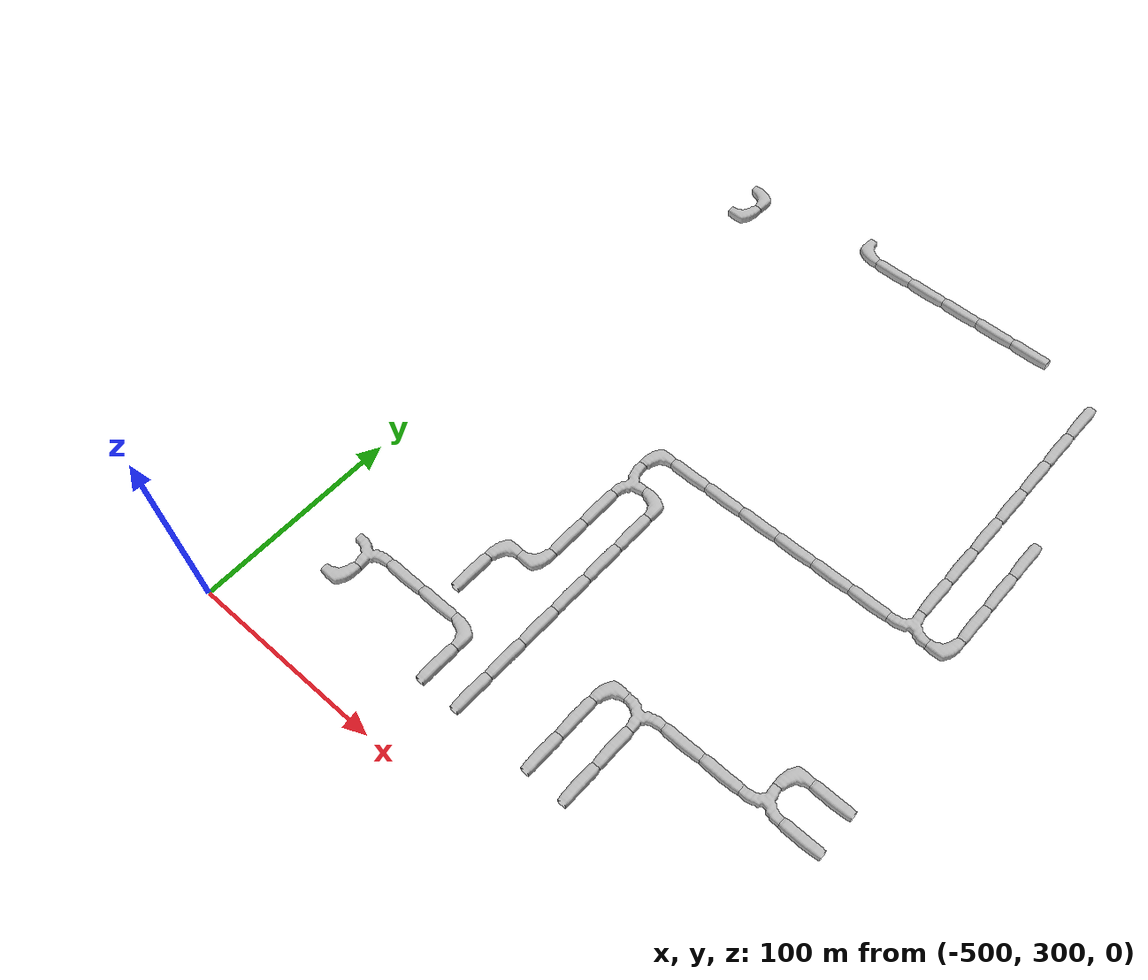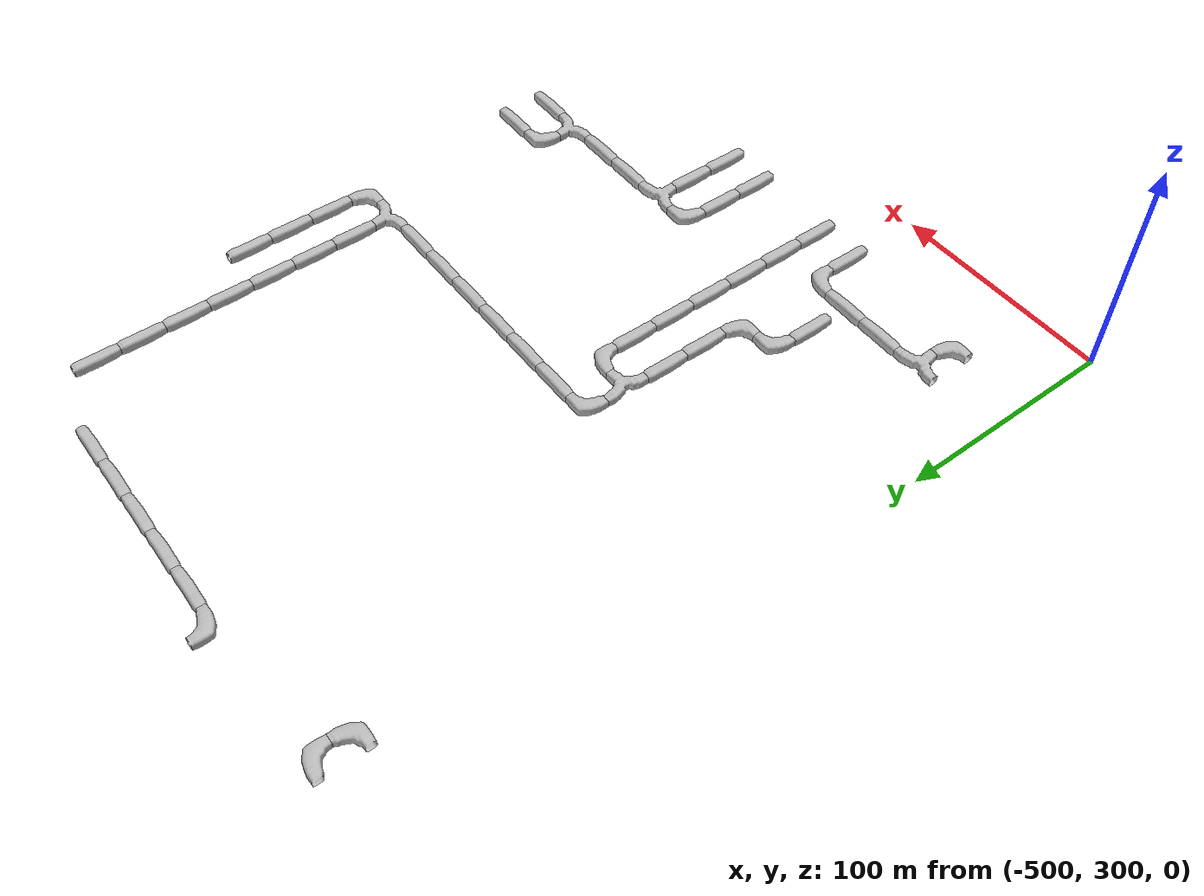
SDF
<sdf version="1.6">
 <world name="cave_32000">
  <include>
   <static>true</static>
   <name>cave_-16_17</name>
   <pose>-320 340 0 0 0 0.0</pose>
   <uri>model://cave_straight_20m</uri>
  </include>
  <include>
   <static>true</static>
   <name>cave_-16_18</name>
   <pose>-320 360 0 0 0 0.0</pose>
   <uri>model://cave_straight_20m</uri>
  </include>
  <include>
   <static>true</static>
   <name>cave_-16_19</name>
   <pose>-320 380 0 0 0 3.141592653589793</pose>
   <uri>model://cave_3way_20m</uri>
  </include>
  <include>
   <static>true</static>
   <name>cave_-15_19</name>
   <pose>-300 380 0 0 0 1.5707963267948966</pose>
   <uri>model://cave_straight_20m</uri>
  </include>
  <include>
   <static>true</static>
   <name>cave_-14_19</name>
   <pose>-280 380 0 0 0 1.5707963267948966</pose>
   <uri>model://cave_straight_20m</uri>
  </include>
  <include>
   <static>true</static>
   <name>cave_-13_19</name>
   <pose>-260 380 0 0 0 0.0</pose>
   <uri>model://cave_3way_20m</uri>
  </include>
  <include>
   <static>true</static>
   <name>cave_-12_19</name>
   <pose>-240 380 0 0 0 1.5707963267948966</pose>
   <uri>model://cave_straight_20m</uri>
  </include>
  <include>
   <static>true</static>
   <name>cave_-13_20</name>
   <pose>-260 400 0 0 0 -1.5707963267948966</pose>
   <uri>model://cave_L_20m</uri>
  </include>
  <include>
   <static>true</static>
   <name>cave_-12_20</name>
   <pose>-240 400 0 0 0 1.5707963267948966</pose>
   <uri>model://cave_straight_20m</uri>
  </include>
  <include>
   <static>true</static>
   <name>cave_-17_19</name>
   <pose>-340 380 0 0 0 -1.5707963267948966</pose>
   <uri>model://cave_L_20m</uri>
  </include>
  <include>
   <static>true</static>
   <name>cave_-17_18</name>
   <pose>-340 360 0 0 0 0.0</pose>
   <uri>model://cave_straight_20m</uri>
  </include>
  <include>
   <static>true</static>
   <name>cave_-17_17</name>
   <pose>-340 340 0 0 0 0.0</pose>
   <uri>model://cave_straight_20m</uri>
  </include>
  <include>
   <static>true</static>
   <name>cave_-20_17</name>
   <pose>-400 340 0 0 0 0.0</pose>
   <uri>model://cave_straight_20m</uri>
  </include>
  <include>
   <static>true</static>
   <name>cave_-20_18</name>
   <pose>-400 360 0 0 0 3.141592653589793</pose>
   <uri>model://cave_L_20m</uri>
  </include>
  <include>
   <static>true</static>
   <name>cave_-21_18</name>
   <pose>-420 360 0 0 0 1.5707963267948966</pose>
   <uri>model://cave_straight_20m</uri>
  </include>
  <include>
   <static>true</static>
   <name>cave_-22_18</name>
   <pose>-440 360 0 0 0 1.5707963267948966</pose>
   <uri>model://cave_straight_20m</uri>
  </include>
  <include>
   <static>true</static>
   <name>cave_-23_18</name>
   <pose>-460 360 0 0 0 3.141592653589793</pose>
   <uri>model://cave_3way_20m</uri>
  </include>
  <include>
   <static>true</static>
   <name>cave_-23_17</name>
   <pose>-460 340 0 0 0 1.5707963267948966</pose>
   <uri>model://cave_L_20m</uri>
  </include>
  <include>
   <static>true</static>
   <name>cave_-23_31</name>
   <pose>-460 620 0 0 0 1.5707963267948966</pose>
   <uri>model://cave_L_20m</uri>
  </include>
  <include>
   <static>true</static>
   <name>cave_-23_32</name>
   <pose>-460 640 0 0 0 3.141592653589793</pose>
   <uri>model://cave_L_20m</uri>
  </include>
  <include>
   <static>true</static>
   <name>cave_-19_17</name>
   <pose>-380 340 0 0 0 0.0</pose>
   <uri>model://cave_straight_20m</uri>
  </include>
  <include>
   <static>true</static>
   <name>cave_-19_18</name>
   <pose>-380 360 0 0 0 0.0</pose>
   <uri>model://cave_straight_20m</uri>
  </include>
  <include>
   <static>true</static>
   <name>cave_-19_19</name>
   <pose>-380 380 0 0 0 0.0</pose>
   <uri>model://cave_straight_20m</uri>
  </include>
  <include>
   <static>true</static>
   <name>cave_-19_20</name>
   <pose>-380 400 0 0 0 0.0</pose>
   <uri>model://cave_straight_20m</uri>
  </include>
  <include>
   <static>true</static>
   <name>cave_-19_21</name>
   <pose>-380 420 0 0 0 0.0</pose>
   <uri>model://cave_straight_20m</uri>
  </include>
  <include>
   <static>true</static>
   <name>cave_-19_22</name>
   <pose>-380 440 0 0 0 0.0</pose>
   <uri>model://cave_straight_20m</uri>
  </include>
  <include>
   <static>true</static>
   <name>cave_-19_23</name>
   <pose>-380 460 0 0 0 3.141592653589793</pose>
   <uri>model://cave_L_20m</uri>
  </include>
  <include>
   <static>true</static>
   <name>cave_-20_23</name>
   <pose>-400 460 0 0 0 -1.5707963267948966</pose>
   <uri>model://cave_3way_20m</uri>
  </include>
  <include>
   <static>true</static>
   <name>cave_-20_22</name>
   <pose>-400 440 0 0 0 0.0</pose>
   <uri>model://cave_straight_20m</uri>
  </include>
  <include>
   <static>true</static>
   <name>cave_-20_21</name>
   <pose>-400 420 0 0 0 0.0</pose>
   <uri>model://cave_straight_20m</uri>
  </include>
  <include>
   <static>true</static>
   <name>cave_-20_20</name>
   <pose>-400 400 0 0 0 1.5707963267948966</pose>
   <uri>model://cave_L_20m</uri>
  </include>
  <include>
   <static>true</static>
   <name>cave_-21_20</name>
   <pose>-420 400 0 0 0 -1.5707963267948966</pose>
   <uri>model://cave_L_20m</uri>
  </include>
  <include>
   <static>true</static>
   <name>cave_-21_19</name>
   <pose>-420 380 0 0 0 0.0</pose>
   <uri>model://cave_straight_20m</uri>
  </include>
  <include>
   <static>true</static>
   <name>cave_-20_24</name>
   <pose>-400 480 0 0 0 -1.5707963267948966</pose>
   <uri>model://cave_L_20m</uri>
  </include>
  <include>
   <static>true</static>
   <name>cave_-19_24</name>
   <pose>-380 480 0 0 0 1.5707963267948966</pose>
   <uri>model://cave_straight_20m</uri>
  </include>
  <include>
   <static>true</static>
   <name>cave_-18_24</name>
   <pose>-360 480 0 0 0 1.5707963267948966</pose>
   <uri>model://cave_straight_20m</uri>
  </include>
  <include>
   <static>true</static>
   <name>cave_-17_24</name>
   <pose>-340 480 0 0 0 1.5707963267948966</pose>
   <uri>model://cave_straight_20m</uri>
  </include>
  <include>
   <static>true</static>
   <name>cave_-16_24</name>
   <pose>-320 480 0 0 0 1.5707963267948966</pose>
   <uri>model://cave_straight_20m</uri>
  </include>
  <include>
   <static>true</static>
   <name>cave_-15_24</name>
   <pose>-300 480 0 0 0 1.5707963267948966</pose>
   <uri>model://cave_straight_20m</uri>
  </include>
  <include>
   <static>true</static>
   <name>cave_-14_24</name>
   <pose>-280 480 0 0 0 1.5707963267948966</pose>
   <uri>model://cave_straight_20m</uri>
  </include>
  <include>
   <static>true</static>
   <name>cave_-13_24</name>
   <pose>-260 480 0 0 0 0.0</pose>
   <uri>model://cave_3way_20m</uri>
  </include>
  <include>
   <static>true</static>
   <name>cave_-12_24</name>
   <pose>-240 480 0 0 0 1.5707963267948966</pose>
   <uri>model://cave_L_20m</uri>
  </include>
  <include>
   <static>true</static>
   <name>cave_-12_25</name>
   <pose>-240 500 0 0 0 0.0</pose>
   <uri>model://cave_straight_20m</uri>
  </include>
  <include>
   <static>true</static>
   <name>cave_-12_26</name>
   <pose>-240 520 0 0 0 0.0</pose>
   <uri>model://cave_straight_20m</uri>
  </include>
  <include>
   <static>true</static>
   <name>cave_-12_27</name>
   <pose>-240 540 0 0 0 0.0</pose>
   <uri>model://cave_straight_20m</uri>
  </include>
  <include>
   <static>true</static>
   <name>cave_-13_25</name>
   <pose>-260 500 0 0 0 0.0</pose>
   <uri>model://cave_straight_20m</uri>
  </include>
  <include>
   <static>true</static>
   <name>cave_-13_26</name>
   <pose>-260 520 0 0 0 0.0</pose>
   <uri>model://cave_straight_20m</uri>
  </include>
  <include>
   <static>true</static>
   <name>cave_-13_27</name>
   <pose>-260 540 0 0 0 0.0</pose>
   <uri>model://cave_straight_20m</uri>
  </include>
  <include>
   <static>true</static>
   <name>cave_-13_28</name>
   <pose>-260 560 0 0 0 0.0</pose>
   <uri>model://cave_straight_20m</uri>
  </include>
  <include>
   <static>true</static>
   <name>cave_-13_29</name>
   <pose>-260 580 0 0 0 0.0</pose>
   <uri>model://cave_straight_20m</uri>
  </include>
  <include>
   <static>true</static>
   <name>cave_-13_30</name>
   <pose>-260 600 0 0 0 0.0</pose>
   <uri>model://cave_straight_20m</uri>
  </include>
  <include>
   <static>true</static>
   <name>cave_-13_31</name>
   <pose>-260 620 0 0 0 0.0</pose>
   <uri>model://cave_straight_20m</uri>
  </include>
  <include>
   <static>true</static>
   <name>cave_-15_32</name>
   <pose>-300 640 0 0 0 1.5707963267948966</pose>
   <uri>model://cave_straight_20m</uri>
  </include>
  <include>
   <static>true</static>
   <name>cave_-16_32</name>
   <pose>-320 640 0 0 0 1.5707963267948966</pose>
   <uri>model://cave_straight_20m</uri>
  </include>
  <include>
   <static>true</static>
   <name>cave_-17_32</name>
   <pose>-340 640 0 0 0 1.5707963267948966</pose>
   <uri>model://cave_straight_20m</uri>
  </include>
  <include>
   <static>true</static>
   <name>cave_-18_32</name>
   <pose>-360 640 0 0 0 1.5707963267948966</pose>
   <uri>model://cave_straight_20m</uri>
  </include>
  <include>
   <static>true</static>
   <name>cave_-19_32</name>
   <pose>-380 640 0 0 0 1.5707963267948966</pose>
   <uri>model://cave_straight_20m</uri>
  </include>
  <include>
   <static>true</static>
   <name>cave_-20_32</name>
   <pose>-400 640 0 0 0 0.0</pose>
   <uri>model://cave_L_20m</uri>
  </include>
 </world>
</sdf>
